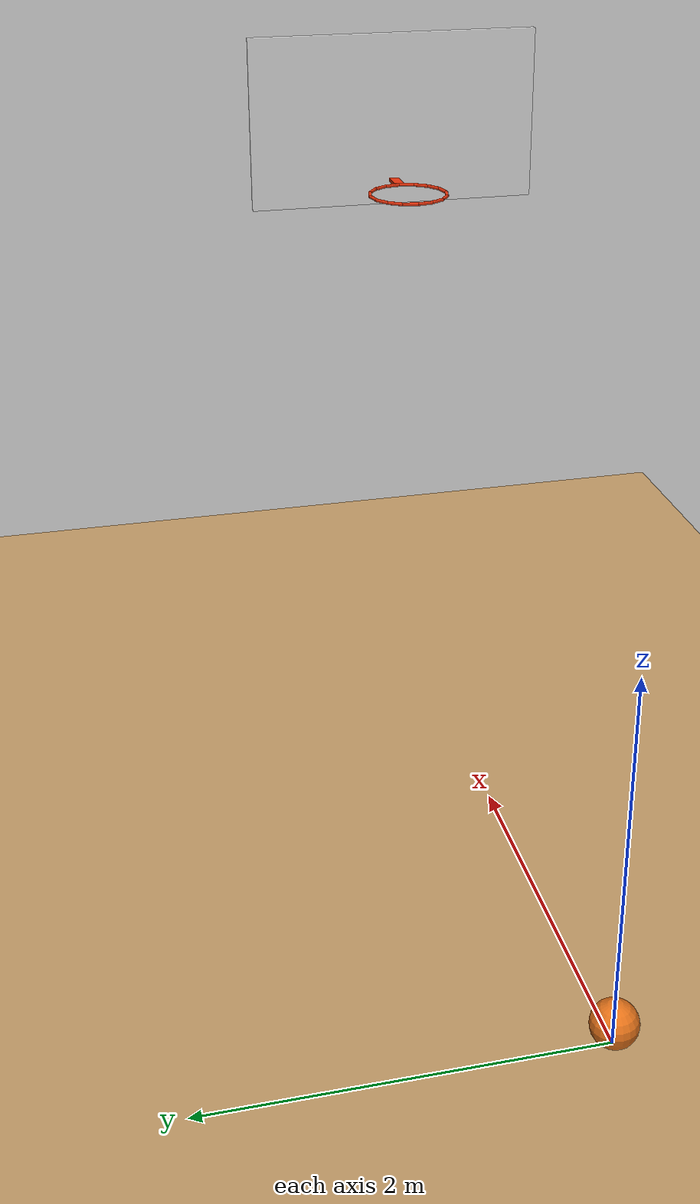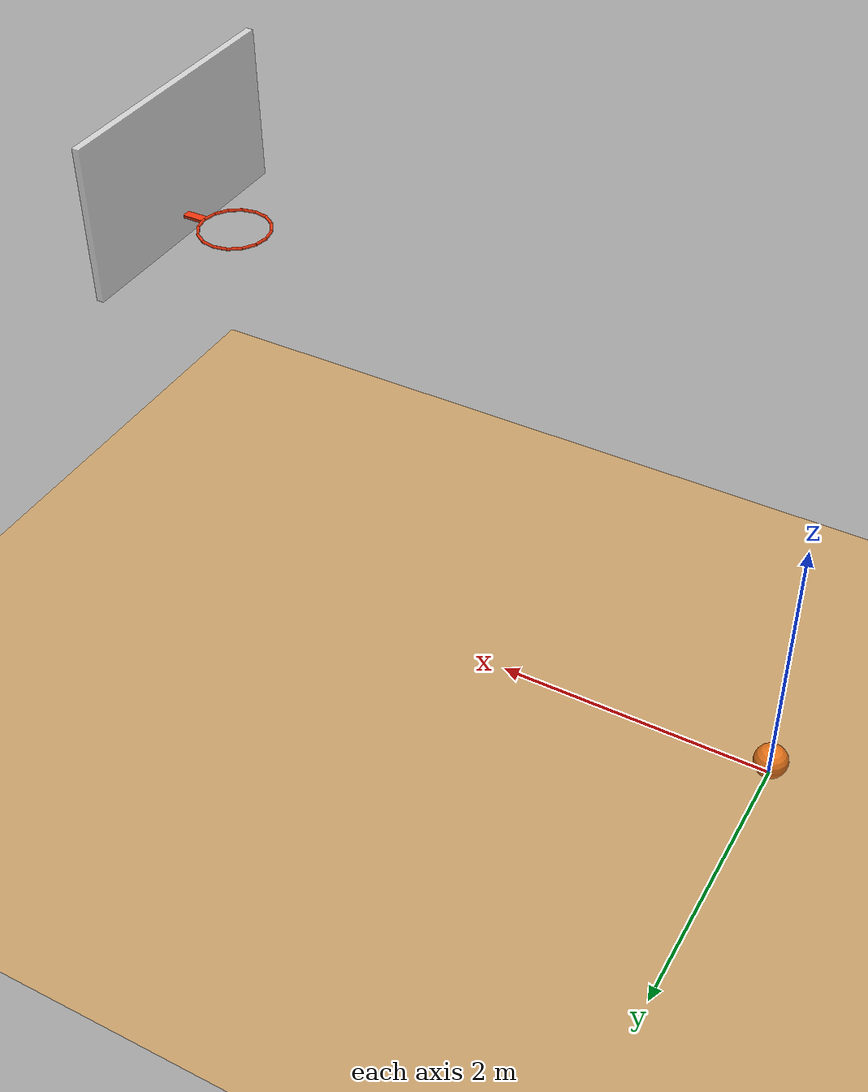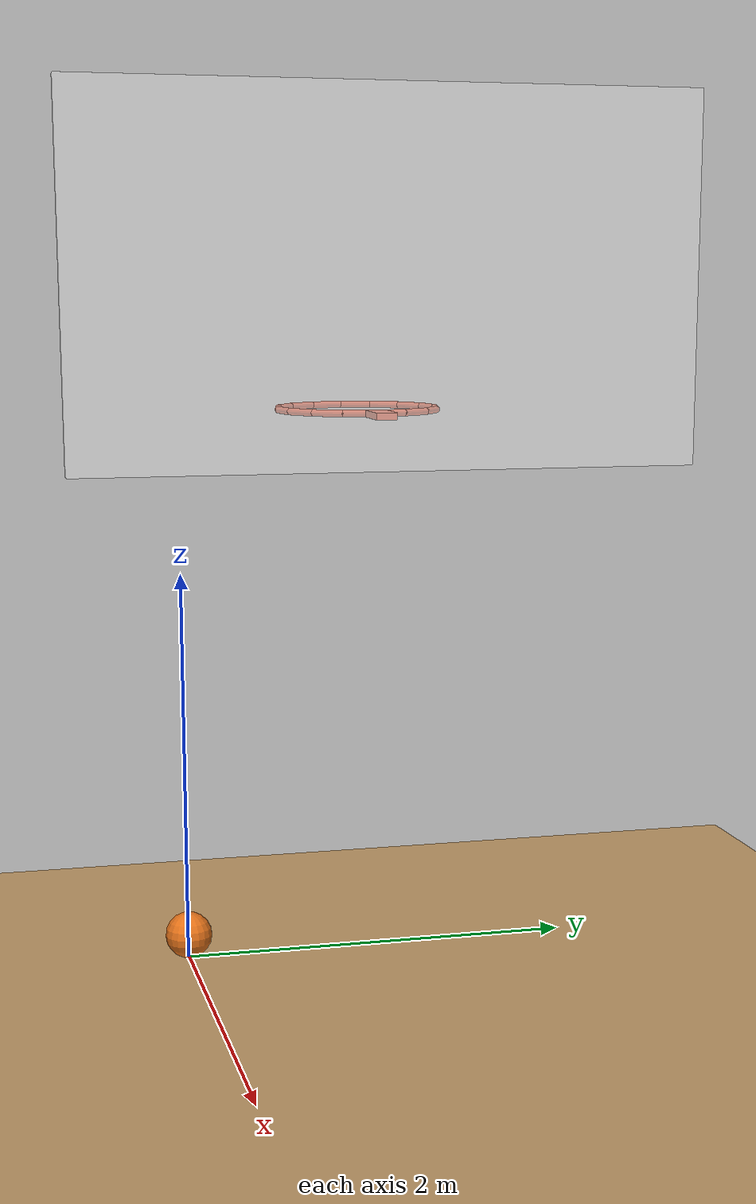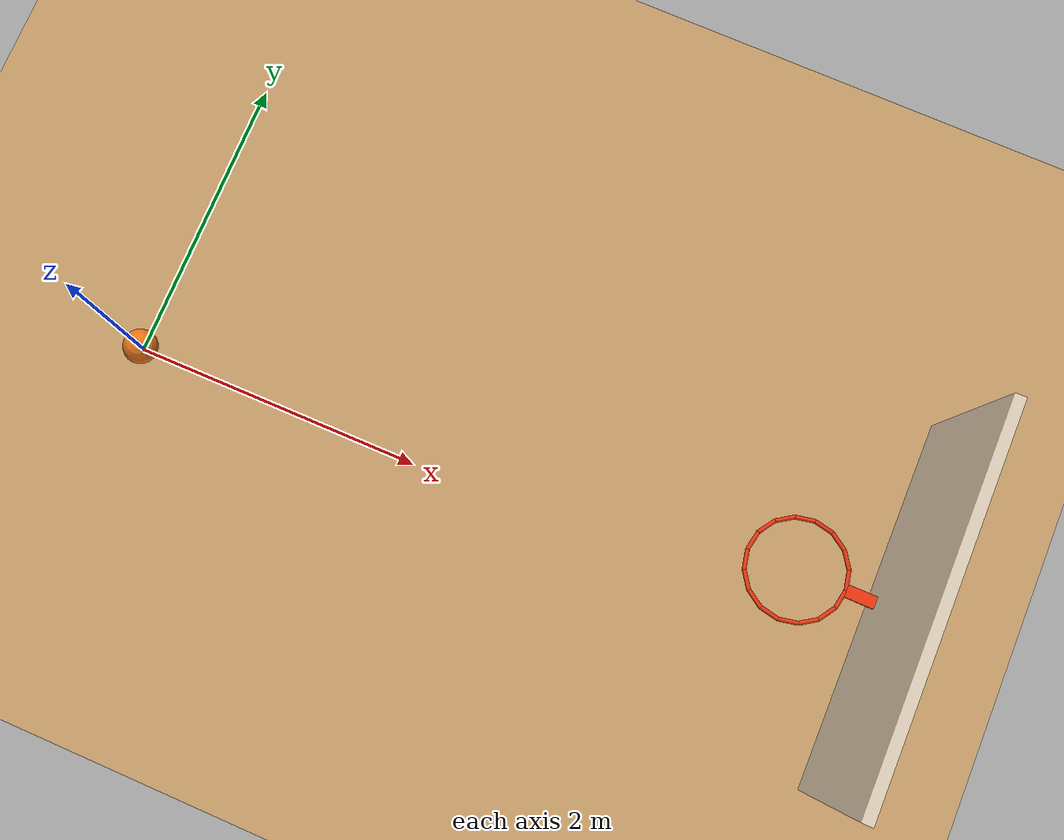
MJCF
<mujoco model="basketball_shot">
  <option timestep="0.002" gravity="0 0 -9.81"/>
  <visual>
    <global offwidth="1280" offheight="720"/>
  </visual>
  <worldbody>
    <light name="sun" pos="2 -3 8" dir="0 0.3 -1" directional="true"/>
    <geom name="floor" type="plane" pos="0 0 0" size="12 12 0.1" rgba="0.75 0.6 0.4 1"/>

    <body name="ball" pos="0 0 0.12">
      <freejoint name="ball_free"/>
      <inertial pos="0 0 0" mass="0.62" diaginertia="0.005952 0.005952 0.005952"/>
      <geom name="ball" type="sphere" size="0.12" condim="6" friction="0.8 0.02 0.04" rgba="0.9 0.45 0.1 1"/>
    </body>

    <body name="hoop" pos="4 0 3.05">
      <geom name="rim00" type="capsule" size="0.01" fromto="0.2386 0 0 0.22044 0.09131 0" rgba="0.9 0.2 0.05 1"/>
      <geom name="rim01" type="capsule" size="0.01" fromto="0.22044 0.09131 0 0.16872 0.16872 0" rgba="0.9 0.2 0.05 1"/>
      <geom name="rim02" type="capsule" size="0.01" fromto="0.16872 0.16872 0 0.09131 0.22044 0" rgba="0.9 0.2 0.05 1"/>
      <geom name="rim03" type="capsule" size="0.01" fromto="0.09131 0.22044 0 0 0.2386 0" rgba="0.9 0.2 0.05 1"/>
      <geom name="rim04" type="capsule" size="0.01" fromto="0 0.2386 0 -0.09131 0.22044 0" rgba="0.9 0.2 0.05 1"/>
      <geom name="rim05" type="capsule" size="0.01" fromto="-0.09131 0.22044 0 -0.16872 0.16872 0" rgba="0.9 0.2 0.05 1"/>
      <geom name="rim06" type="capsule" size="0.01" fromto="-0.16872 0.16872 0 -0.22044 0.09131 0" rgba="0.9 0.2 0.05 1"/>
      <geom name="rim07" type="capsule" size="0.01" fromto="-0.22044 0.09131 0 -0.2386 0 0" rgba="0.9 0.2 0.05 1"/>
      <geom name="rim08" type="capsule" size="0.01" fromto="-0.2386 0 0 -0.22044 -0.09131 0" rgba="0.9 0.2 0.05 1"/>
      <geom name="rim09" type="capsule" size="0.01" fromto="-0.22044 -0.09131 0 -0.16872 -0.16872 0" rgba="0.9 0.2 0.05 1"/>
      <geom name="rim10" type="capsule" size="0.01" fromto="-0.16872 -0.16872 0 -0.09131 -0.22044 0" rgba="0.9 0.2 0.05 1"/>
      <geom name="rim11" type="capsule" size="0.01" fromto="-0.09131 -0.22044 0 0 -0.2386 0" rgba="0.9 0.2 0.05 1"/>
      <geom name="rim12" type="capsule" size="0.01" fromto="0 -0.2386 0 0.09131 -0.22044 0" rgba="0.9 0.2 0.05 1"/>
      <geom name="rim13" type="capsule" size="0.01" fromto="0.09131 -0.22044 0 0.16872 -0.16872 0" rgba="0.9 0.2 0.05 1"/>
      <geom name="rim14" type="capsule" size="0.01" fromto="0.16872 -0.16872 0 0.22044 -0.09131 0" rgba="0.9 0.2 0.05 1"/>
      <geom name="rim15" type="capsule" size="0.01" fromto="0.22044 -0.09131 0 0.2386 0 0" rgba="0.9 0.2 0.05 1"/>
      <geom name="bracket" type="box" pos="0.3093 0 0" size="0.0707 0.03 0.01" rgba="0.9 0.2 0.05 1"/>
      <geom name="backboard" type="box" pos="0.405 0 0.375" size="0.025 0.9 0.525" rgba="0.95 0.95 0.95 0.6"/>
    </body>
  </worldbody>

  <keyframe>
    <key name="start" qpos="0 0 0.12 1 0 0 0" qvel="2.865 0 8.947 0 0 0"/>
  </keyframe>
</mujoco>
